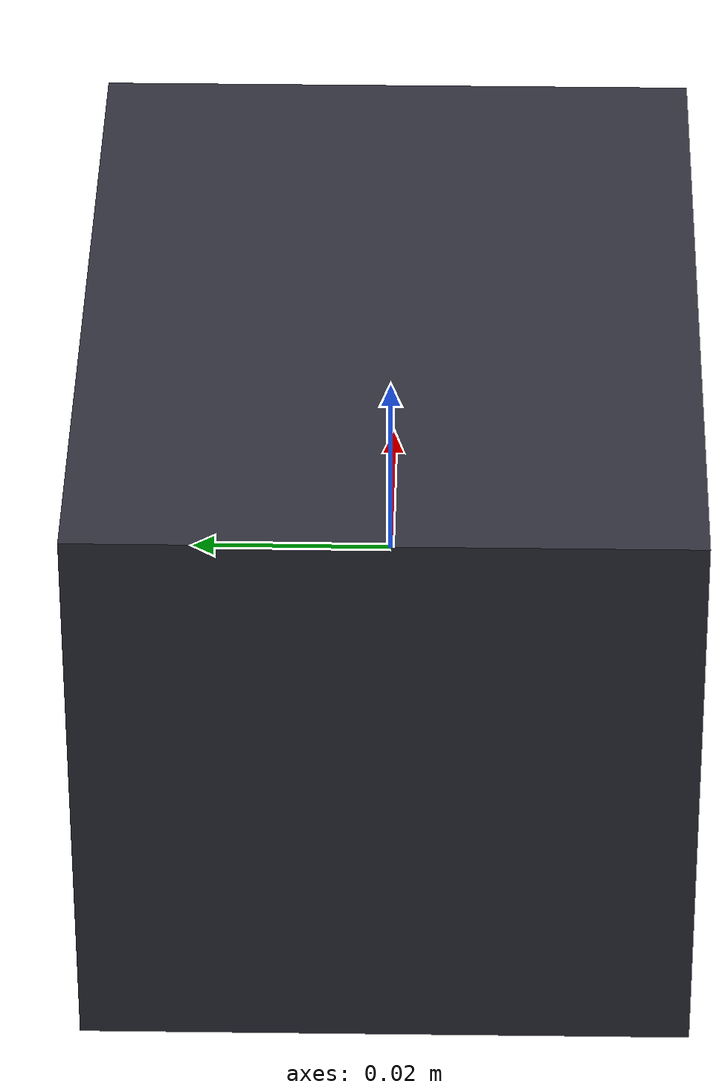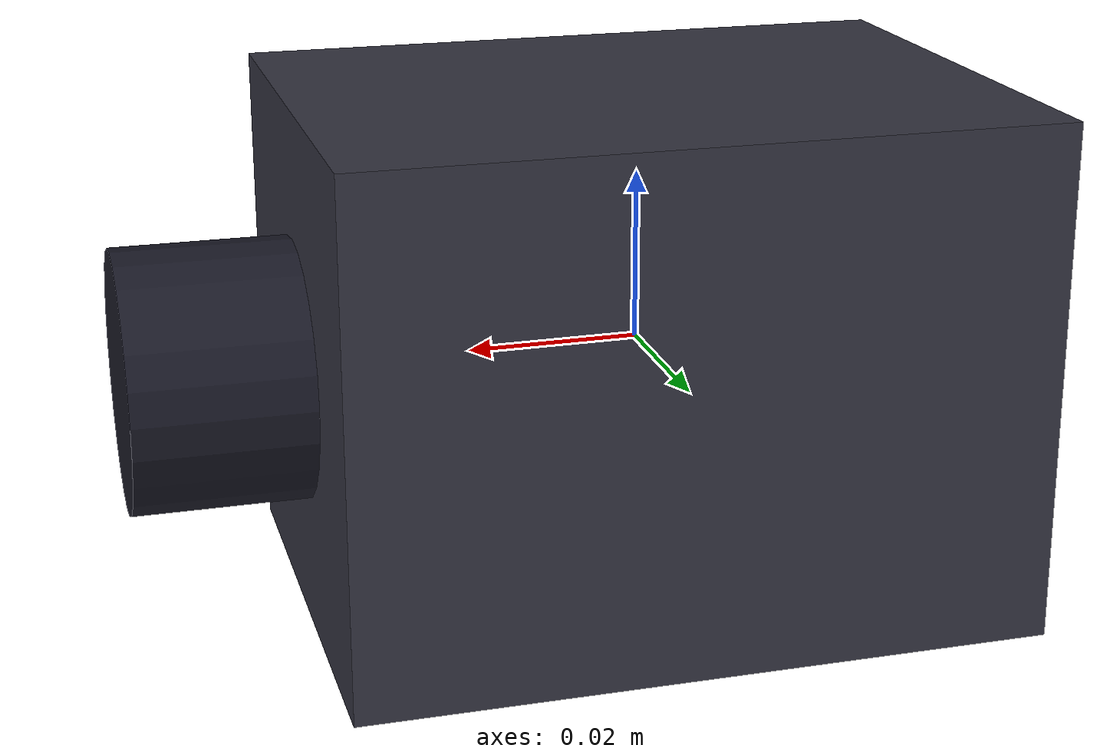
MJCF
<mujoco>
  <!-- RGB Camera sensor with visual representation -->
  <asset>
    <material name="camera_body" rgba="0.2 0.2 0.25 1"/>
    <material name="camera_lens" rgba="0.1 0.1 0.15 1"/>
  </asset>

  <worldbody>
    <body name="rgb_camera_body">
      <!-- Camera housing -->
      <geom name="camera_housing" type="box" size="0.04 0.03 0.03" pos="0 0 0" material="camera_body"/>
      <!-- Lens -->
      <geom name="camera_lens" type="cylinder" size="0.015 0.01" pos="0.05 0 0" euler="0 90 0" material="camera_lens"/>

      <!-- Site for attaching sensors -->
      <site name="camera_site" pos="0.05 0 0" euler="0 0 0"/>

      <!-- The actual MuJoCo camera -->
      <camera name="rgb_cam" pos="0.05 0 0" fovy="60"/>
    </body>
  </worldbody>
</mujoco>
